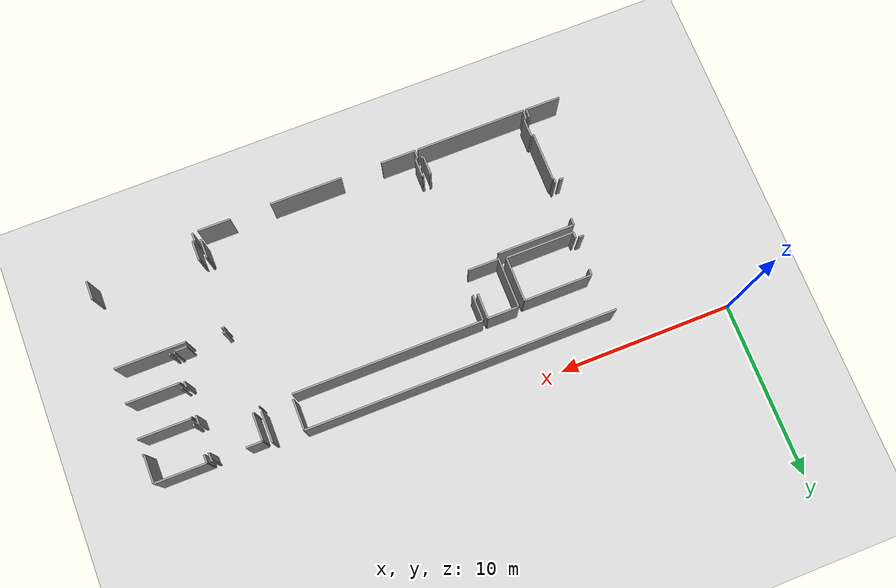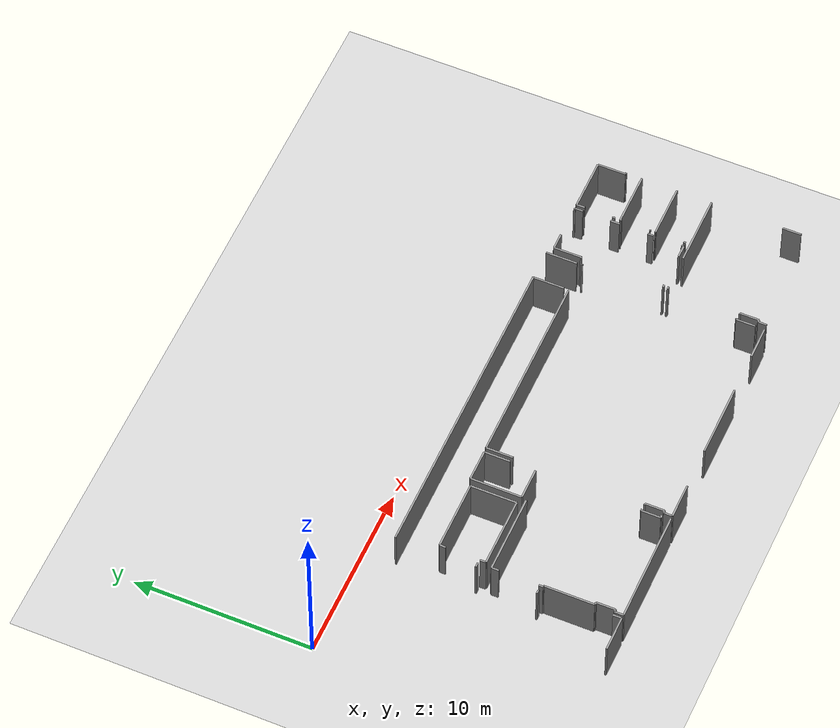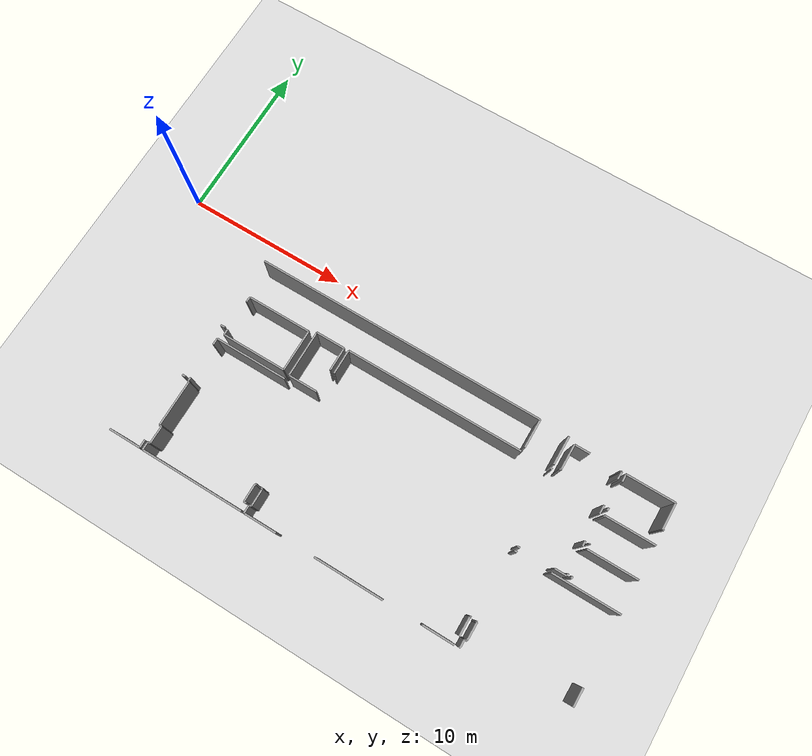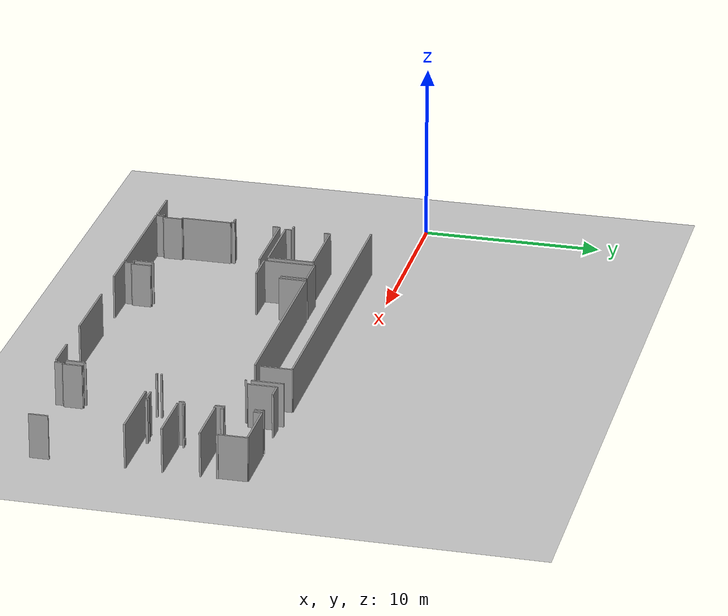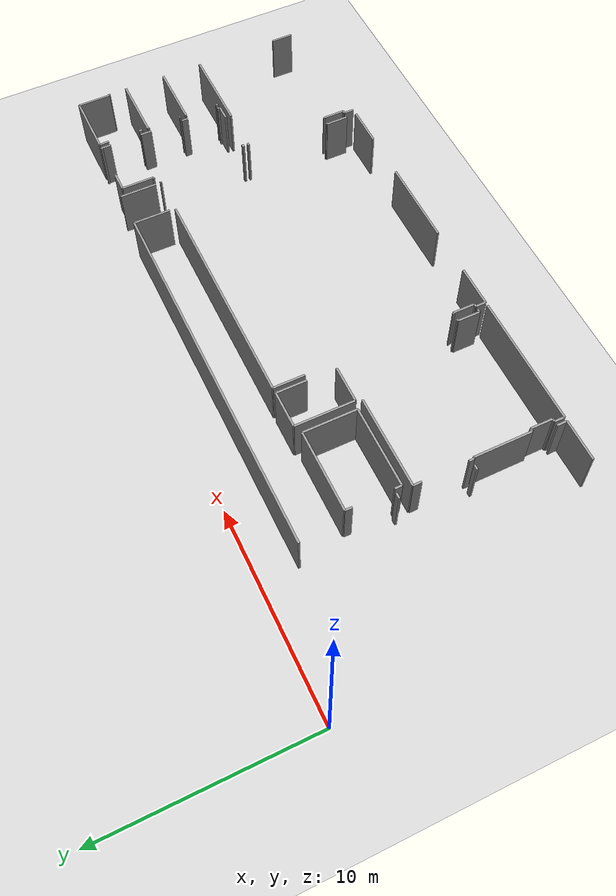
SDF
<sdf version="1.6">
 <world name="default">
  <model name="ground_plane">
   <static>1</static>
   <link name="link">
    <collision name="collision">
     <geometry><plane><normal>0 0 1</normal><size>100 100</size></plane></geometry>
     <surface><friction><ode><mu>100</mu><mu2>50</mu2></ode></friction></surface>
    </collision>
    <visual name="visual">
     <cast_shadows>0</cast_shadows>
     <geometry><plane><normal>0 0 1</normal><size>100 100</size></plane></geometry>
     <material>
      <script><uri>file://media/materials/scripts/gazebo.material</uri><name>Gazebo/Grey</name></script>
     </material>
    </visual>
   </link>
  </model>
  <model name="0510040942_A-40">
   <static>1</static>
   <link name="Wall_172">
    <collision name="Wall_172_Collision">
     <geometry><box><size>0.270246266668 0.1 2.5</size></box></geometry>
     <pose>0.135123133334 0 1.25 0 0 0</pose>
    </collision>
    <visual name="Wall_172_Visual">
     <pose>0.135123133334 0 1.25 0 0 0</pose>
     <geometry><box><size>0.270246266668 0.1 2.5</size></box></geometry>
     <material>
      <script><uri>file://media/materials/scripts/gazebo.material</uri><name>Gazebo/Grey</name></script>
      <ambient>1 1 1 1</ambient>
     </material>
    </visual>
    <pose>65.2724665998 -18.7663828869 0 0 0 3.14159265359</pose>
   </link>
   <link name="Wall_175">
    <collision name="Wall_175_Collision">
     <geometry><box><size>0.221652689141 0.1 2.5</size></box></geometry>
     <pose>0.11082634457 0 1.25 0 0 0</pose>
    </collision>
    <visual name="Wall_175_Visual">
     <pose>0.11082634457 0 1.25 0 0 0</pose>
     <geometry><box><size>0.221652689141 0.1 2.5</size></box></geometry>
     <material>
      <script><uri>file://media/materials/scripts/gazebo.material</uri><name>Gazebo/Grey</name></script>
      <ambient>1 1 1 1</ambient>
     </material>
    </visual>
    <pose>65.0022203332 -22.2106905871 0 0 0 3.14159265359</pose>
   </link>
   <link name="Wall_183">
    <collision name="Wall_183_Collision">
     <geometry><box><size>0.483271375465 0.1 2.5</size></box></geometry>
     <pose>0.241635687732 0 1.25 0 0 0</pose>
    </collision>
    <visual name="Wall_183_Visual">
     <pose>0.241635687732 0 1.25 0 0 0</pose>
     <geometry><box><size>0.483271375465 0.1 2.5</size></box></geometry>
     <material>
      <script><uri>file://media/materials/scripts/gazebo.material</uri><name>Gazebo/Grey</name></script>
      <ambient>1 1 1 1</ambient>
     </material>
    </visual>
    <pose>65.1320146669 -26.2039915247 0 0 0 -1.57079632679</pose>
   </link>
   <link name="Wall_184">
    <collision name="Wall_184_Collision">
     <geometry><box><size>1.9843434792 0.1 2.5</size></box></geometry>
     <pose>0.992171739599 0 1.25 0 0 0</pose>
    </collision>
    <visual name="Wall_184_Visual">
     <pose>0.992171739599 0 1.25 0 0 0</pose>
     <geometry><box><size>1.9843434792 0.1 2.5</size></box></geometry>
     <material>
      <script><uri>file://media/materials/scripts/gazebo.material</uri><name>Gazebo/Grey</name></script>
      <ambient>1 1 1 1</ambient>
     </material>
    </visual>
    <pose>65.1320146669 -26.6872629001 0 0 0 3.14159265359</pose>
   </link>
   <link name="Wall_189">
    <collision name="Wall_189_Collision">
     <geometry><box><size>3.9109582958 0.1 2.5</size></box></geometry>
     <pose>1.9554791479 0 1.25 0 0 0</pose>
    </collision>
    <visual name="Wall_189_Visual">
     <pose>1.9554791479 0 1.25 0 0 0</pose>
     <geometry><box><size>3.9109582958 0.1 2.5</size></box></geometry>
     <material>
      <script><uri>file://media/materials/scripts/gazebo.material</uri><name>Gazebo/Grey</name></script>
      <ambient>1 1 1 1</ambient>
     </material>
    </visual>
    <pose>65.4816854232 -16.564827385 0 0 0 0.0</pose>
   </link>
   <link name="Wall_190">
    <collision name="Wall_190_Collision">
     <geometry><box><size>2.56733953335 0.1 2.5</size></box></geometry>
     <pose>1.28366976667 0 1.25 0 0 0</pose>
    </collision>
    <visual name="Wall_190_Visual">
     <pose>1.28366976667 0 1.25 0 0 0</pose>
     <geometry><box><size>2.56733953335 0.1 2.5</size></box></geometry>
     <material>
      <script><uri>file://media/materials/scripts/gazebo.material</uri><name>Gazebo/Grey</name></script>
      <ambient>1 1 1 1</ambient>
     </material>
    </visual>
    <pose>69.392643719 -16.564827385 0 0 0 -1.57079632679</pose>
   </link>
   <link name="Wall_191">
    <collision name="Wall_191_Collision">
     <geometry><box><size>3.92364591395 0.1 2.5</size></box></geometry>
     <pose>1.96182295698 0 1.25 0 0 0</pose>
    </collision>
    <visual name="Wall_191_Visual">
     <pose>1.96182295698 0 1.25 0 0 0</pose>
     <geometry><box><size>3.92364591395 0.1 2.5</size></box></geometry>
     <material>
      <script><uri>file://media/materials/scripts/gazebo.material</uri><name>Gazebo/Grey</name></script>
      <ambient>1 1 1 1</ambient>
     </material>
    </visual>
    <pose>69.392643719 -19.1321669183 0 0 0 3.14159265359</pose>
   </link>
   <link name="Wall_192">
    <collision name="Wall_192_Collision">
     <geometry><box><size>0.334318738343 0.1 2.5</size></box></geometry>
     <pose>0.167159369172 0 1.25 0 0 0</pose>
    </collision>
    <visual name="Wall_192_Visual">
     <pose>0.167159369172 0 1.25 0 0 0</pose>
     <geometry><box><size>0.334318738343 0.1 2.5</size></box></geometry>
     <material>
      <script><uri>file://media/materials/scripts/gazebo.material</uri><name>Gazebo/Grey</name></script>
      <ambient>1 1 1 1</ambient>
     </material>
    </visual>
    <pose>65.468997805 -19.1321669183 0 0 0 1.57079632679</pose>
   </link>
   <link name="Wall_193">
    <collision name="Wall_193_Collision">
     <geometry><box><size>0.340898734039 0.1 2.5</size></box></geometry>
     <pose>0.170449367019 0 1.25 0 0 0</pose>
    </collision>
    <visual name="Wall_193_Visual">
     <pose>0.170449367019 0 1.25 0 0 0</pose>
     <geometry><box><size>0.340898734039 0.1 2.5</size></box></geometry>
     <material>
      <script><uri>file://media/materials/scripts/gazebo.material</uri><name>Gazebo/Grey</name></script>
      <ambient>1 1 1 1</ambient>
     </material>
    </visual>
    <pose>65.468997805 -16.9054899324 0 0 0 1.53356958512</pose>
   </link>
   <link name="Wall_194">
    <collision name="Wall_194_Collision">
     <geometry><box><size>0.488219546545 0.1 2.5</size></box></geometry>
     <pose>0.244109773272 0 1.25 0 0 0</pose>
    </collision>
    <visual name="Wall_194_Visual">
     <pose>0.244109773272 0 1.25 0 0 0</pose>
     <geometry><box><size>0.488219546545 0.1 2.5</size></box></geometry>
     <material>
      <script><uri>file://media/materials/scripts/gazebo.material</uri><name>Gazebo/Grey</name></script>
      <ambient>1 1 1 1</ambient>
     </material>
    </visual>
    <pose>65.3348896812 -26.6974129947 0 0 0 1.57079632679</pose>
   </link>
   <link name="Wall_195">
    <collision name="Wall_195_Collision">
     <geometry><box><size>0.142608828045 0.1 2.5</size></box></geometry>
     <pose>0.0713044140224 0 1.25 0 0 0</pose>
    </collision>
    <visual name="Wall_195_Visual">
     <pose>0.0713044140224 0 1.25 0 0 0</pose>
     <geometry><box><size>0.142608828045 0.1 2.5</size></box></geometry>
     <material>
      <script><uri>file://media/materials/scripts/gazebo.material</uri><name>Gazebo/Grey</name></script>
      <ambient>1 1 1 1</ambient>
     </material>
    </visual>
    <pose>65.3348896812 -26.2091934481 0 0 0 0.0</pose>
   </link>
   <link name="Wall_196">
    <collision name="Wall_196_Collision">
     <geometry><box><size>1.06918558179 0.1 2.5</size></box></geometry>
     <pose>0.534592790895 0 1.25 0 0 0</pose>
    </collision>
    <visual name="Wall_196_Visual">
     <pose>0.534592790895 0 1.25 0 0 0</pose>
     <geometry><box><size>1.06918558179 0.1 2.5</size></box></geometry>
     <material>
      <script><uri>file://media/materials/scripts/gazebo.material</uri><name>Gazebo/Grey</name></script>
      <ambient>1 1 1 1</ambient>
     </material>
    </visual>
    <pose>65.4774985092 -26.2091934481 0 0 0 1.57079632679</pose>
   </link>
   <link name="Wall_197">
    <collision name="Wall_197_Collision">
     <geometry><box><size>0.143496961315 0.1 2.5</size></box></geometry>
     <pose>0.0717484806577 0 1.25 0 0 0</pose>
    </collision>
    <visual name="Wall_197_Visual">
     <pose>0.0717484806577 0 1.25 0 0 0</pose>
     <geometry><box><size>0.143496961315 0.1 2.5</size></box></geometry>
     <material>
      <script><uri>file://media/materials/scripts/gazebo.material</uri><name>Gazebo/Grey</name></script>
      <ambient>1 1 1 1</ambient>
     </material>
    </visual>
    <pose>65.4774985092 -25.1400078663 0 0 0 3.14159265359</pose>
   </link>
   <link name="Wall_198">
    <collision name="Wall_198_Collision">
     <geometry><box><size>2.79330601266 0.1 2.5</size></box></geometry>
     <pose>1.39665300633 0 1.25 0 0 0</pose>
    </collision>
    <visual name="Wall_198_Visual">
     <pose>1.39665300633 0 1.25 0 0 0</pose>
     <geometry><box><size>2.79330601266 0.1 2.5</size></box></geometry>
     <material>
      <script><uri>file://media/materials/scripts/gazebo.material</uri><name>Gazebo/Grey</name></script>
      <ambient>1 1 1 1</ambient>
     </material>
    </visual>
    <pose>65.3340015479 -25.1400078663 0 0 0 1.57079632679</pose>
   </link>
   <link name="Wall_199">
    <collision name="Wall_199_Collision">
     <geometry><box><size>0.0609005671365 0.1 2.5</size></box></geometry>
     <pose>0.0304502835683 0 1.25 0 0 0</pose>
    </collision>
    <visual name="Wall_199_Visual">
     <pose>0.0304502835683 0 1.25 0 0 0</pose>
     <geometry><box><size>0.0609005671365 0.1 2.5</size></box></geometry>
     <material>
      <script><uri>file://media/materials/scripts/gazebo.material</uri><name>Gazebo/Grey</name></script>
      <ambient>1 1 1 1</ambient>
     </material>
    </visual>
    <pose>65.3340015479 -22.3467018537 0 0 0 3.14159265359</pose>
   </link>
   <link name="Wall_200">
    <collision name="Wall_200_Collision">
     <geometry><box><size>0.239415354555 0.1 2.5</size></box></geometry>
     <pose>0.119707677278 0 1.25 0 0 0</pose>
    </collision>
    <visual name="Wall_200_Visual">
     <pose>0.119707677278 0 1.25 0 0 0</pose>
     <geometry><box><size>0.239415354555 0.1 2.5</size></box></geometry>
     <material>
      <script><uri>file://media/materials/scripts/gazebo.material</uri><name>Gazebo/Grey</name></script>
      <ambient>1 1 1 1</ambient>
     </material>
    </visual>
    <pose>65.2731009808 -22.3467018537 0 0 0 1.57079632679</pose>
   </link>
   <link name="Wall_201">
    <collision name="Wall_201_Collision">
     <geometry><box><size>0.406257533273 0.1 2.5</size></box></geometry>
     <pose>0.203128766637 0 1.25 0 0 0</pose>
    </collision>
    <visual name="Wall_201_Visual">
     <pose>0.203128766637 0 1.25 0 0 0</pose>
     <geometry><box><size>0.406257533273 0.1 2.5</size></box></geometry>
     <material>
      <script><uri>file://media/materials/scripts/gazebo.material</uri><name>Gazebo/Grey</name></script>
      <ambient>1 1 1 1</ambient>
     </material>
    </visual>
    <pose>65.2731009808 -19.9238742911 0 0 0 1.57079632679</pose>
   </link>
   <link name="Wall_202">
    <collision name="Wall_202_Collision">
     <geometry><box><size>4.45081644823 0.1 2.5</size></box></geometry>
     <pose>2.22540822411 0 1.25 0 0 0</pose>
    </collision>
    <visual name="Wall_202_Visual">
     <pose>2.22540822411 0 1.25 0 0 0</pose>
     <geometry><box><size>4.45081644823 0.1 2.5</size></box></geometry>
     <material>
      <script><uri>file://media/materials/scripts/gazebo.material</uri><name>Gazebo/Grey</name></script>
      <ambient>1 1 1 1</ambient>
     </material>
    </visual>
    <pose>65.2731009808 -19.5176167578 0 0 0 0.0</pose>
   </link>
   <link name="Wall_203">
    <collision name="Wall_203_Collision">
     <geometry><box><size>0.0899552127079 0.1 2.5</size></box></geometry>
     <pose>0.044977606354 0 1.25 0 0 0</pose>
    </collision>
    <visual name="Wall_203_Visual">
     <pose>0.044977606354 0 1.25 0 0 0</pose>
     <geometry><box><size>0.0899552127079 0.1 2.5</size></box></geometry>
     <material>
      <script><uri>file://media/materials/scripts/gazebo.material</uri><name>Gazebo/Grey</name></script>
      <ambient>1 1 1 1</ambient>
     </material>
    </visual>
    <pose>71.5778321936 -25.1138713729 0 0 0 3.14159265359</pose>
   </link>
   <link name="Wall_204">
    <collision name="Wall_204_Collision">
     <geometry><box><size>1.08073131431 0.1 2.5</size></box></geometry>
     <pose>0.540365657155 0 1.25 0 0 0</pose>
    </collision>
    <visual name="Wall_204_Visual">
     <pose>0.540365657155 0 1.25 0 0 0</pose>
     <geometry><box><size>1.08073131431 0.1 2.5</size></box></geometry>
     <material>
      <script><uri>file://media/materials/scripts/gazebo.material</uri><name>Gazebo/Grey</name></script>
      <ambient>1 1 1 1</ambient>
     </material>
    </visual>
    <pose>71.4878769809 -25.1138713729 0 0 0 -1.57079632679</pose>
   </link>
   <link name="Wall_205">
    <collision name="Wall_205_Collision">
     <geometry><box><size>0.156945836558 0.1 2.5</size></box></geometry>
     <pose>0.0784729182791 0 1.25 0 0 0</pose>
    </collision>
    <visual name="Wall_205_Visual">
     <pose>0.0784729182791 0 1.25 0 0 0</pose>
     <geometry><box><size>0.156945836558 0.1 2.5</size></box></geometry>
     <material>
      <script><uri>file://media/materials/scripts/gazebo.material</uri><name>Gazebo/Grey</name></script>
      <ambient>1 1 1 1</ambient>
     </material>
    </visual>
    <pose>71.4878769809 -26.1946026872 0 0 0 0.0</pose>
   </link>
   <link name="Wall_206">
    <collision name="Wall_206_Collision">
     <geometry><box><size>6.30994346839 0.1 2.5</size></box></geometry>
     <pose>3.15497173419 0 1.25 0 0 0</pose>
    </collision>
    <visual name="Wall_206_Visual">
     <pose>3.15497173419 0 1.25 0 0 0</pose>
     <geometry><box><size>6.30994346839 0.1 2.5</size></box></geometry>
     <material>
      <script><uri>file://media/materials/scripts/gazebo.material</uri><name>Gazebo/Grey</name></script>
      <ambient>1 1 1 1</ambient>
     </material>
    </visual>
    <pose>71.6448228174 -26.6859941383 0 0 0 -3.13978299196</pose>
   </link>
   <link name="Wall_207">
    <collision name="Wall_207_Collision">
     <geometry><box><size>2.85306469416 0.1 2.5</size></box></geometry>
     <pose>1.42653234708 0 1.25 0 0 0</pose>
    </collision>
    <visual name="Wall_207_Visual">
     <pose>1.42653234708 0 1.25 0 0 0</pose>
     <geometry><box><size>2.85306469416 0.1 2.5</size></box></geometry>
     <material>
      <script><uri>file://media/materials/scripts/gazebo.material</uri><name>Gazebo/Grey</name></script>
      <ambient>1 1 1 1</ambient>
     </material>
    </visual>
    <pose>69.8109544895 -19.2325259779 0 0 0 1.57079632679</pose>
   </link>
   <link name="Wall_208">
    <collision name="Wall_208_Collision">
     <geometry><box><size>1.77702779857 0.1 2.5</size></box></geometry>
     <pose>0.888513899286 0 1.25 0 0 0</pose>
    </collision>
    <visual name="Wall_208_Visual">
     <pose>0.888513899286 0 1.25 0 0 0</pose>
     <geometry><box><size>1.77702779857 0.1 2.5</size></box></geometry>
     <material>
      <script><uri>file://media/materials/scripts/gazebo.material</uri><name>Gazebo/Grey</name></script>
      <ambient>1 1 1 1</ambient>
     </material>
    </visual>
    <pose>69.8109544895 -16.3794612837 0 0 0 0.0</pose>
   </link>
   <link name="Wall_209">
    <collision name="Wall_209_Collision">
     <geometry><box><size>1.45159039294 0.1 2.5</size></box></geometry>
     <pose>0.725795196468 0 1.25 0 0 0</pose>
    </collision>
    <visual name="Wall_209_Visual">
     <pose>0.725795196468 0 1.25 0 0 0</pose>
     <geometry><box><size>1.45159039294 0.1 2.5</size></box></geometry>
     <material>
      <script><uri>file://media/materials/scripts/gazebo.material</uri><name>Gazebo/Grey</name></script>
      <ambient>1 1 1 1</ambient>
     </material>
    </visual>
    <pose>71.5879822881 -16.3794612837 0 0 0 -1.57079632679</pose>
   </link>
   <link name="Wall_210">
    <collision name="Wall_210_Collision">
     <geometry><box><size>1.77703160775 0.1 2.5</size></box></geometry>
     <pose>0.888515803876 0 1.25 0 0 0</pose>
    </collision>
    <visual name="Wall_210_Visual">
     <pose>0.888515803876 0 1.25 0 0 0</pose>
     <geometry><box><size>1.77703160775 0.1 2.5</size></box></geometry>
     <material>
      <script><uri>file://media/materials/scripts/gazebo.material</uri><name>Gazebo/Grey</name></script>
      <ambient>1 1 1 1</ambient>
     </material>
    </visual>
    <pose>71.5879822881 -19.2362053872 0 0 0 3.13952211535</pose>
   </link>
   <link name="Wall_211">
    <collision name="Wall_211_Collision">
     <geometry><box><size>1.06626742962 0.1 2.5</size></box></geometry>
     <pose>0.533133714808 0 1.25 0 0 0</pose>
    </collision>
    <visual name="Wall_211_Visual">
     <pose>0.533133714808 0 1.25 0 0 0</pose>
     <geometry><box><size>1.06626742962 0.1 2.5</size></box></geometry>
     <material>
      <script><uri>file://media/materials/scripts/gazebo.material</uri><name>Gazebo/Grey</name></script>
      <ambient>1 1 1 1</ambient>
     </material>
    </visual>
    <pose>71.9542738242 -26.198662725 0 0 0 1.57079632679</pose>
   </link>
   <link name="Wall_212">
    <collision name="Wall_212_Collision">
     <geometry><box><size>0.0870370605326 0.1 2.5</size></box></geometry>
     <pose>0.0435185302663 0 1.25 0 0 0</pose>
    </collision>
    <visual name="Wall_212_Visual">
     <pose>0.0435185302663 0 1.25 0 0 0</pose>
     <geometry><box><size>0.0870370605326 0.1 2.5</size></box></geometry>
     <material>
      <script><uri>file://media/materials/scripts/gazebo.material</uri><name>Gazebo/Grey</name></script>
      <ambient>1 1 1 1</ambient>
     </material>
    </visual>
    <pose>71.9542738242 -25.1323952954 0 0 0 3.14159265359</pose>
   </link>
   <link name="Wall_213">
    <collision name="Wall_213_Collision">
     <geometry><box><size>1.50881155081 0.1 2.5</size></box></geometry>
     <pose>0.754405775404 0 1.25 0 0 0</pose>
    </collision>
    <visual name="Wall_213_Visual">
     <pose>0.754405775404 0 1.25 0 0 0</pose>
     <geometry><box><size>1.50881155081 0.1 2.5</size></box></geometry>
     <material>
      <script><uri>file://media/materials/scripts/gazebo.material</uri><name>Gazebo/Grey</name></script>
      <ambient>1 1 1 1</ambient>
     </material>
    </visual>
    <pose>71.8672367636 -17.8708907977 0 0 0 1.57079632679</pose>
   </link>
   <link name="Wall_214">
    <collision name="Wall_214_Collision">
     <geometry><box><size>10.8493091592 0.1 2.5</size></box></geometry>
     <pose>5.4246545796 0 1.25 0 0 0</pose>
    </collision>
    <visual name="Wall_214_Visual">
     <pose>5.4246545796 0 1.25 0 0 0</pose>
     <geometry><box><size>10.8493091592 0.1 2.5</size></box></geometry>
     <material>
      <script><uri>file://media/materials/scripts/gazebo.material</uri><name>Gazebo/Grey</name></script>
      <ambient>1 1 1 1</ambient>
     </material>
    </visual>
    <pose>71.8672367636 -16.3620792469 0 0 0 0.0</pose>
   </link>
   <link name="Wall_215">
    <collision name="Wall_215_Collision">
     <geometry><box><size>0.0667368714871 0.1 2.5</size></box></geometry>
     <pose>0.0333684357436 0 1.25 0 0 0</pose>
    </collision>
    <visual name="Wall_215_Visual">
     <pose>0.0333684357436 0 1.25 0 0 0</pose>
     <geometry><box><size>0.0667368714871 0.1 2.5</size></box></geometry>
     <material>
      <script><uri>file://media/materials/scripts/gazebo.material</uri><name>Gazebo/Grey</name></script>
      <ambient>1 1 1 1</ambient>
     </material>
    </visual>
    <pose>84.5101945012 -16.3620792469 0 0 0 0.0</pose>
   </link>
   <link name="Wall_216">
    <collision name="Wall_216_Collision">
     <geometry><box><size>0.0751106994684 0.1 2.5</size></box></geometry>
     <pose>0.0375553497342 0 1.25 0 0 0</pose>
    </collision>
    <visual name="Wall_216_Visual">
     <pose>0.0375553497342 0 1.25 0 0 0</pose>
     <geometry><box><size>0.0751106994684 0.1 2.5</size></box></geometry>
     <material>
      <script><uri>file://media/materials/scripts/gazebo.material</uri><name>Gazebo/Grey</name></script>
      <ambient>1 1 1 1</ambient>
     </material>
    </visual>
    <pose>84.5769313727 -25.097123717 0 0 0 3.14159265359</pose>
   </link>
   <link name="Wall_217">
    <collision name="Wall_217_Collision">
     <geometry><box><size>1.08707512339 0.1 2.5</size></box></geometry>
     <pose>0.543537561694 0 1.25 0 0 0</pose>
    </collision>
    <visual name="Wall_217_Visual">
     <pose>0.543537561694 0 1.25 0 0 0</pose>
     <geometry><box><size>1.08707512339 0.1 2.5</size></box></geometry>
     <material>
      <script><uri>file://media/materials/scripts/gazebo.material</uri><name>Gazebo/Grey</name></script>
      <ambient>1 1 1 1</ambient>
     </material>
    </visual>
    <pose>84.5018206732 -25.097123717 0 0 0 -1.57079632679</pose>
   </link>
   <link name="Wall_218">
    <collision name="Wall_218_Collision">
     <geometry><box><size>1.86939365873 0.1 2.5</size></box></geometry>
     <pose>0.934696829364 0 1.25 0 0 0</pose>
    </collision>
    <visual name="Wall_218_Visual">
     <pose>0.934696829364 0 1.25 0 0 0</pose>
     <geometry><box><size>1.86939365873 0.1 2.5</size></box></geometry>
     <material>
      <script><uri>file://media/materials/scripts/gazebo.material</uri><name>Gazebo/Grey</name></script>
      <ambient>1 1 1 1</ambient>
     </material>
    </visual>
    <pose>84.5018206732 -26.6909423094 0 0 0 3.14159265359</pose>
   </link>
   <link name="Wall_219">
    <collision name="Wall_219_Collision">
     <geometry><box><size>4.15849372597 0.1 2.5</size></box></geometry>
     <pose>2.07924686299 0 1.25 0 0 0</pose>
    </collision>
    <visual name="Wall_219_Visual">
     <pose>2.07924686299 0 1.25 0 0 0</pose>
     <geometry><box><size>4.15849372597 0.1 2.5</size></box></geometry>
     <material>
      <script><uri>file://media/materials/scripts/gazebo.material</uri><name>Gazebo/Grey</name></script>
      <ambient>1 1 1 1</ambient>
     </material>
    </visual>
    <pose>80.3056447213 -26.6909423094 0 0 0 3.14159265359</pose>
   </link>
   <link name="Wall_220">
    <collision name="Wall_220_Collision">
     <geometry><box><size>1.98586599338 0.1 2.5</size></box></geometry>
     <pose>0.992932996689 0 1.25 0 0 0</pose>
    </collision>
    <visual name="Wall_220_Visual">
     <pose>0.992932996689 0 1.25 0 0 0</pose>
     <geometry><box><size>1.98586599338 0.1 2.5</size></box></geometry>
     <material>
      <script><uri>file://media/materials/scripts/gazebo.material</uri><name>Gazebo/Grey</name></script>
      <ambient>1 1 1 1</ambient>
     </material>
    </visual>
    <pose>73.8081885888 -26.6909423094 0 0 0 3.14159265359</pose>
   </link>
   <link name="Wall_221">
    <collision name="Wall_221_Collision">
     <geometry><box><size>0.476166309299 0.1 2.5</size></box></geometry>
     <pose>0.238083154649 0 1.25 0 0 0</pose>
    </collision>
    <visual name="Wall_221_Visual">
     <pose>0.238083154649 0 1.25 0 0 0</pose>
     <geometry><box><size>0.476166309299 0.1 2.5</size></box></geometry>
     <material>
      <script><uri>file://media/materials/scripts/gazebo.material</uri><name>Gazebo/Grey</name></script>
      <ambient>1 1 1 1</ambient>
     </material>
    </visual>
    <pose>71.8223225954 -26.6909423094 0 0 0 1.57079632679</pose>
   </link>
   <link name="Wall_222">
    <collision name="Wall_222_Collision">
     <geometry><box><size>0.132931427487 0.1 2.5</size></box></geometry>
     <pose>0.0664657137435 0 1.25 0 0 0</pose>
    </collision>
    <visual name="Wall_222_Visual">
     <pose>0.0664657137435 0 1.25 0 0 0</pose>
     <geometry><box><size>0.132931427487 0.1 2.5</size></box></geometry>
     <material>
      <script><uri>file://media/materials/scripts/gazebo.material</uri><name>Gazebo/Grey</name></script>
      <ambient>1 1 1 1</ambient>
     </material>
    </visual>
    <pose>71.8223225954 -26.2147760001 0 0 0 0.12151375678</pose>
   </link>
   <link name="Wall_223">
    <collision name="Wall_223_Collision">
     <geometry><box><size>0.0851339178096 0.1 2.5</size></box></geometry>
     <pose>0.0425669589048 0 1.25 0 0 0</pose>
    </collision>
    <visual name="Wall_223_Visual">
     <pose>0.0425669589048 0 1.25 0 0 0</pose>
     <geometry><box><size>0.0851339178096 0.1 2.5</size></box></geometry>
     <material>
      <script><uri>file://media/materials/scripts/gazebo.material</uri><name>Gazebo/Grey</name></script>
      <ambient>1 1 1 1</ambient>
     </material>
    </visual>
    <pose>84.8884123983 -16.1471509953 0 0 0 0.0</pose>
   </link>
   <link name="Wall_224">
    <collision name="Wall_224_Collision">
     <geometry><box><size>1.56209954705 0.1 2.5</size></box></geometry>
     <pose>0.781049773526 0 1.25 0 0 0</pose>
    </collision>
    <visual name="Wall_224_Visual">
     <pose>0.781049773526 0 1.25 0 0 0</pose>
     <geometry><box><size>1.56209954705 0.1 2.5</size></box></geometry>
     <material>
      <script><uri>file://media/materials/scripts/gazebo.material</uri><name>Gazebo/Grey</name></script>
      <ambient>1 1 1 1</ambient>
     </material>
    </visual>
    <pose>84.9735463162 -16.1471509953 0 0 0 1.57079632679</pose>
   </link>
   <link name="Wall_225">
    <collision name="Wall_225_Collision">
     <geometry><box><size>0.927972391743 0.1 2.5</size></box></geometry>
     <pose>0.463986195871 0 1.25 0 0 0</pose>
    </collision>
    <visual name="Wall_225_Visual">
     <pose>0.463986195871 0 1.25 0 0 0</pose>
     <geometry><box><size>0.927972391743 0.1 2.5</size></box></geometry>
     <material>
      <script><uri>file://media/materials/scripts/gazebo.material</uri><name>Gazebo/Grey</name></script>
      <ambient>1 1 1 1</ambient>
     </material>
    </visual>
    <pose>84.9735463162 -14.5850514483 0 0 0 0.0</pose>
   </link>
   <link name="Wall_226">
    <collision name="Wall_226_Collision">
     <geometry><box><size>0.088305822348 0.1 2.5</size></box></geometry>
     <pose>0.044152911174 0 1.25 0 0 0</pose>
    </collision>
    <visual name="Wall_226_Visual">
     <pose>0.044152911174 0 1.25 0 0 0</pose>
     <geometry><box><size>0.088305822348 0.1 2.5</size></box></geometry>
     <material>
      <script><uri>file://media/materials/scripts/gazebo.material</uri><name>Gazebo/Grey</name></script>
      <ambient>1 1 1 1</ambient>
     </material>
    </visual>
    <pose>87.7046829999 -14.5850514483 0 0 0 0.0</pose>
   </link>
   <link name="Wall_227">
    <collision name="Wall_227_Collision">
     <geometry><box><size>0.465889338594 0.1 2.5</size></box></geometry>
     <pose>0.232944669297 0 1.25 0 0 0</pose>
    </collision>
    <visual name="Wall_227_Visual">
     <pose>0.232944669297 0 1.25 0 0 0</pose>
     <geometry><box><size>0.465889338594 0.1 2.5</size></box></geometry>
     <material>
      <script><uri>file://media/materials/scripts/gazebo.material</uri><name>Gazebo/Grey</name></script>
      <ambient>1 1 1 1</ambient>
     </material>
    </visual>
    <pose>87.7929888222 -14.5850514483 0 0 0 -1.57079632679</pose>
   </link>
   <link name="Wall_228">
    <collision name="Wall_228_Collision">
     <geometry><box><size>0.533894971897 0.1 2.5</size></box></geometry>
     <pose>0.266947485948 0 1.25 0 0 0</pose>
    </collision>
    <visual name="Wall_228_Visual">
     <pose>0.266947485948 0 1.25 0 0 0</pose>
     <geometry><box><size>0.533894971897 0.1 2.5</size></box></geometry>
     <material>
      <script><uri>file://media/materials/scripts/gazebo.material</uri><name>Gazebo/Grey</name></script>
      <ambient>1 1 1 1</ambient>
     </material>
    </visual>
    <pose>87.7929888222 -16.6214141619 0 0 0 -1.57079632679</pose>
   </link>
   <link name="Wall_229">
    <collision name="Wall_229_Collision">
     <geometry><box><size>0.326198662725 0.1 2.5</size></box></geometry>
     <pose>0.163099331363 0 1.25 0 0 0</pose>
    </collision>
    <visual name="Wall_229_Visual">
     <pose>0.163099331363 0 1.25 0 0 0</pose>
     <geometry><box><size>0.326198662725 0.1 2.5</size></box></geometry>
     <material>
      <script><uri>file://media/materials/scripts/gazebo.material</uri><name>Gazebo/Grey</name></script>
      <ambient>1 1 1 1</ambient>
     </material>
    </visual>
    <pose>87.7929888222 -18.756613421 0 0 0 -1.57079632679</pose>
   </link>
   <link name="Wall_230">
    <collision name="Wall_230_Collision">
     <geometry><box><size>0.141847570955 0.1 2.5</size></box></geometry>
     <pose>0.0709237854777 0 1.25 0 0 0</pose>
    </collision>
    <visual name="Wall_230_Visual">
     <pose>0.0709237854777 0 1.25 0 0 0</pose>
     <geometry><box><size>0.141847570955 0.1 2.5</size></box></geometry>
     <material>
      <script><uri>file://media/materials/scripts/gazebo.material</uri><name>Gazebo/Grey</name></script>
      <ambient>1 1 1 1</ambient>
     </material>
    </visual>
    <pose>87.7929888222 -20.6673687149 0 0 0 -1.57079632679</pose>
   </link>
   <link name="Wall_231">
    <collision name="Wall_231_Collision">
     <geometry><box><size>0.730045548549 0.1 2.5</size></box></geometry>
     <pose>0.365022774275 0 1.25 0 0 0</pose>
    </collision>
    <visual name="Wall_231_Visual">
     <pose>0.365022774275 0 1.25 0 0 0</pose>
     <geometry><box><size>0.730045548549 0.1 2.5</size></box></geometry>
     <material>
      <script><uri>file://media/materials/scripts/gazebo.material</uri><name>Gazebo/Grey</name></script>
      <ambient>1 1 1 1</ambient>
     </material>
    </visual>
    <pose>87.7929888222 -20.8092162858 0 0 0 3.14159265359</pose>
   </link>
   <link name="Wall_232">
    <collision name="Wall_232_Collision">
     <geometry><box><size>0.167109562248 0.1 2.5</size></box></geometry>
     <pose>0.0835547811241 0 1.25 0 0 0</pose>
    </collision>
    <visual name="Wall_232_Visual">
     <pose>0.0835547811241 0 1.25 0 0 0</pose>
     <geometry><box><size>0.167109562248 0.1 2.5</size></box></geometry>
     <material>
      <script><uri>file://media/materials/scripts/gazebo.material</uri><name>Gazebo/Grey</name></script>
      <ambient>1 1 1 1</ambient>
     </material>
    </visual>
    <pose>85.0553814532 -20.8092162858 0 0 0 -3.10058222562</pose>
   </link>
   <link name="Wall_233">
    <collision name="Wall_233_Collision">
     <geometry><box><size>2.92411535582 0.1 2.5</size></box></geometry>
     <pose>1.46205767791 0 1.25 0 0 0</pose>
    </collision>
    <visual name="Wall_233_Visual">
     <pose>1.46205767791 0 1.25 0 0 0</pose>
     <geometry><box><size>2.92411535582 0.1 2.5</size></box></geometry>
     <material>
      <script><uri>file://media/materials/scripts/gazebo.material</uri><name>Gazebo/Grey</name></script>
      <ambient>1 1 1 1</ambient>
     </material>
    </visual>
    <pose>88.0431886522 -14.5803570296 0 0 0 0.0</pose>
   </link>
   <link name="Wall_234">
    <collision name="Wall_234_Collision">
     <geometry><box><size>1.59090044026 0.1 2.5</size></box></geometry>
     <pose>0.79545022013 0 1.25 0 0 0</pose>
    </collision>
    <visual name="Wall_234_Visual">
     <pose>0.79545022013 0 1.25 0 0 0</pose>
     <geometry><box><size>1.59090044026 0.1 2.5</size></box></geometry>
     <material>
      <script><uri>file://media/materials/scripts/gazebo.material</uri><name>Gazebo/Grey</name></script>
      <ambient>1 1 1 1</ambient>
     </material>
    </visual>
    <pose>90.967304008 -14.5803570296 0 0 0 -1.57079632679</pose>
   </link>
   <link name="Wall_235">
    <collision name="Wall_235_Collision">
     <geometry><box><size>0.0877983176218 0.1 2.5</size></box></geometry>
     <pose>0.0438991588109 0 1.25 0 0 0</pose>
    </collision>
    <visual name="Wall_235_Visual">
     <pose>0.0438991588109 0 1.25 0 0 0</pose>
     <geometry><box><size>0.0877983176218 0.1 2.5</size></box></geometry>
     <material>
      <script><uri>file://media/materials/scripts/gazebo.material</uri><name>Gazebo/Grey</name></script>
      <ambient>1 1 1 1</ambient>
     </material>
    </visual>
    <pose>90.967304008 -16.1712574698 0 0 0 0.0</pose>
   </link>
   <link name="Wall_238">
    <collision name="Wall_238_Collision">
     <geometry><box><size>0.170014083256 0.1 2.5</size></box></geometry>
     <pose>0.0850070416281 0 1.25 0 0 0</pose>
    </collision>
    <visual name="Wall_238_Visual">
     <pose>0.0850070416281 0 1.25 0 0 0</pose>
     <geometry><box><size>0.170014083256 0.1 2.5</size></box></geometry>
     <material>
      <script><uri>file://media/materials/scripts/gazebo.material</uri><name>Gazebo/Grey</name></script>
      <ambient>1 1 1 1</ambient>
     </material>
    </visual>
    <pose>88.0600631843 -16.7910476166 0 0 0 1.57079632679</pose>
   </link>
   <link name="Wall_239">
    <collision name="Wall_239_Collision">
     <geometry><box><size>0.463785777036 0.1 2.5</size></box></geometry>
     <pose>0.231892888518 0 1.25 0 0 0</pose>
    </collision>
    <visual name="Wall_239_Visual">
     <pose>0.231892888518 0 1.25 0 0 0</pose>
     <geometry><box><size>0.463785777036 0.1 2.5</size></box></geometry>
     <material>
      <script><uri>file://media/materials/scripts/gazebo.material</uri><name>Gazebo/Grey</name></script>
      <ambient>1 1 1 1</ambient>
     </material>
    </visual>
    <pose>88.0600631843 -15.0438357207 0 0 0 1.60718868365</pose>
   </link>
   <link name="Wall_240">
    <collision name="Wall_240_Collision">
     <geometry><box><size>3.00011418856 0.1 2.5</size></box></geometry>
     <pose>1.50005709428 0 1.25 0 0 0</pose>
    </collision>
    <visual name="Wall_240_Visual">
     <pose>1.50005709428 0 1.25 0 0 0</pose>
     <geometry><box><size>3.00011418856 0.1 2.5</size></box></geometry>
     <material>
      <script><uri>file://media/materials/scripts/gazebo.material</uri><name>Gazebo/Grey</name></script>
      <ambient>1 1 1 1</ambient>
     </material>
    </visual>
    <pose>88.0480099471 -17.0796909296 0 0 0 0.0</pose>
   </link>
   <link name="Wall_243">
    <collision name="Wall_243_Collision">
     <geometry><box><size>0.0695281474809 0.1 2.5</size></box></geometry>
     <pose>0.0347640737404 0 1.25 0 0 0</pose>
    </collision>
    <visual name="Wall_243_Visual">
     <pose>0.0347640737404 0 1.25 0 0 0</pose>
     <geometry><box><size>0.0695281474809 0.1 2.5</size></box></geometry>
     <material>
      <script><uri>file://media/materials/scripts/gazebo.material</uri><name>Gazebo/Grey</name></script>
      <ambient>1 1 1 1</ambient>
     </material>
    </visual>
    <pose>88.0485174518 -18.8151033406 0 0 0 1.57079632679</pose>
   </link>
   <link name="Wall_244">
    <collision name="Wall_244_Collision">
     <geometry><box><size>0.0858966741611 0.1 2.5</size></box></geometry>
     <pose>0.0429483370806 0 1.25 0 0 0</pose>
    </collision>
    <visual name="Wall_244_Visual">
     <pose>0.0429483370806 0 1.25 0 0 0</pose>
     <geometry><box><size>0.0858966741611 0.1 2.5</size></box></geometry>
     <material>
      <script><uri>file://media/materials/scripts/gazebo.material</uri><name>Gazebo/Grey</name></script>
      <ambient>1 1 1 1</ambient>
     </material>
    </visual>
    <pose>88.0485174518 -17.1655861045 0 0 0 1.57670467754</pose>
   </link>
   <link name="Wall_245">
    <collision name="Wall_245_Collision">
     <geometry><box><size>3.00036794093 0.1 2.5</size></box></geometry>
     <pose>1.50018397046 0 1.25 0 0 0</pose>
    </collision>
    <visual name="Wall_245_Visual">
     <pose>1.50018397046 0 1.25 0 0 0</pose>
     <geometry><box><size>3.00036794093 0.1 2.5</size></box></geometry>
     <material>
      <script><uri>file://media/materials/scripts/gazebo.material</uri><name>Gazebo/Grey</name></script>
      <ambient>1 1 1 1</ambient>
     </material>
    </visual>
    <pose>88.0491518327 -19.0894096451 0 0 0 0.0</pose>
   </link>
   <link name="Wall_248">
    <collision name="Wall_248_Collision">
     <geometry><box><size>0.135250009516 0.1 2.5</size></box></geometry>
     <pose>0.0676250047579 0 1.25 0 0 0</pose>
    </collision>
    <visual name="Wall_248_Visual">
     <pose>0.0676250047579 0 1.25 0 0 0</pose>
     <geometry><box><size>0.135250009516 0.1 2.5</size></box></geometry>
     <material>
      <script><uri>file://media/materials/scripts/gazebo.material</uri><name>Gazebo/Grey</name></script>
      <ambient>1 1 1 1</ambient>
     </material>
    </visual>
    <pose>88.0450917949 -20.8160675996 0 0 0 1.57079632679</pose>
   </link>
   <link name="Wall_249">
    <collision name="Wall_249_Collision">
     <geometry><box><size>0.0414341556773 0.1 2.5</size></box></geometry>
     <pose>0.0207170778387 0 1.25 0 0 0</pose>
    </collision>
    <visual name="Wall_249_Visual">
     <pose>0.0207170778387 0 1.25 0 0 0</pose>
     <geometry><box><size>0.0414341556773 0.1 2.5</size></box></geometry>
     <material>
      <script><uri>file://media/materials/scripts/gazebo.material</uri><name>Gazebo/Grey</name></script>
      <ambient>1 1 1 1</ambient>
     </material>
    </visual>
    <pose>88.0450917949 -19.1306444041 0 0 0 1.47265113443</pose>
   </link>
   <link name="Wall_250">
    <collision name="Wall_250_Collision">
     <geometry><box><size>1.05180354492 0.1 2.5</size></box></geometry>
     <pose>0.52590177246 0 1.25 0 0 0</pose>
    </collision>
    <visual name="Wall_250_Visual">
     <pose>0.52590177246 0 1.25 0 0 0</pose>
     <geometry><box><size>1.05180354492 0.1 2.5</size></box></geometry>
     <material>
      <script><uri>file://media/materials/scripts/gazebo.material</uri><name>Gazebo/Grey</name></script>
      <ambient>1 1 1 1</ambient>
     </material>
    </visual>
    <pose>84.9465216895 -26.198662725 0 0 0 1.57079632679</pose>
   </link>
   <link name="Wall_251">
    <collision name="Wall_251_Collision">
     <geometry><box><size>0.0725731758377 0.1 2.5</size></box></geometry>
     <pose>0.0362865879188 0 1.25 0 0 0</pose>
    </collision>
    <visual name="Wall_251_Visual">
     <pose>0.0362865879188 0 1.25 0 0 0</pose>
     <geometry><box><size>0.0725731758377 0.1 2.5</size></box></geometry>
     <material>
      <script><uri>file://media/materials/scripts/gazebo.material</uri><name>Gazebo/Grey</name></script>
      <ambient>1 1 1 1</ambient>
     </material>
    </visual>
    <pose>84.9465216895 -25.1468591801 0 0 0 3.14159265359</pose>
   </link>
   <link name="Wall_252">
    <collision name="Wall_252_Collision">
     <geometry><box><size>0.163035893272 0.1 2.5</size></box></geometry>
     <pose>0.0815179466359 0 1.25 0 0 0</pose>
    </collision>
    <visual name="Wall_252_Visual">
     <pose>0.0815179466359 0 1.25 0 0 0</pose>
     <geometry><box><size>0.163035893272 0.1 2.5</size></box></geometry>
     <material>
      <script><uri>file://media/materials/scripts/gazebo.material</uri><name>Gazebo/Grey</name></script>
      <ambient>1 1 1 1</ambient>
     </material>
    </visual>
    <pose>84.8739485136 -21.0754025147 0 0 0 0.0</pose>
   </link>
   <link name="Wall_253">
    <collision name="Wall_253_Collision">
     <geometry><box><size>4.01664615502 0.1 2.5</size></box></geometry>
     <pose>2.00832307751 0 1.25 0 0 0</pose>
    </collision>
    <visual name="Wall_253_Visual">
     <pose>2.00832307751 0 1.25 0 0 0</pose>
     <geometry><box><size>4.01664615502 0.1 2.5</size></box></geometry>
     <material>
      <script><uri>file://media/materials/scripts/gazebo.material</uri><name>Gazebo/Grey</name></script>
      <ambient>1 1 1 1</ambient>
     </material>
    </visual>
    <pose>87.0297017141 -21.0754025147 0 0 0 0.0</pose>
   </link>
   <link name="Wall_256">
    <collision name="Wall_256_Collision">
     <geometry><box><size>1.05497544946 0.1 2.5</size></box></geometry>
     <pose>0.527487724729 0 1.25 0 0 0</pose>
    </collision>
    <visual name="Wall_256_Visual">
     <pose>0.527487724729 0 1.25 0 0 0</pose>
     <geometry><box><size>1.05497544946 0.1 2.5</size></box></geometry>
     <material>
      <script><uri>file://media/materials/scripts/gazebo.material</uri><name>Gazebo/Grey</name></script>
      <ambient>1 1 1 1</ambient>
     </material>
    </visual>
    <pose>90.9848129211 -25.1436872756 0 0 0 -1.57079632679</pose>
   </link>
   <link name="Wall_259">
    <collision name="Wall_259_Collision">
     <geometry><box><size>0.477181318751 0.1 2.5</size></box></geometry>
     <pose>0.238590659376 0 1.25 0 0 0</pose>
    </collision>
    <visual name="Wall_259_Visual">
     <pose>0.238590659376 0 1.25 0 0 0</pose>
     <geometry><box><size>0.477181318751 0.1 2.5</size></box></geometry>
     <material>
      <script><uri>file://media/materials/scripts/gazebo.material</uri><name>Gazebo/Grey</name></script>
      <ambient>1 1 1 1</ambient>
     </material>
    </visual>
    <pose>84.8097491658 -26.6847253765 0 0 0 1.57079632679</pose>
   </link>
   <link name="Wall_260">
    <collision name="Wall_260_Collision">
     <geometry><box><size>0.137060575325 0.1 2.5</size></box></geometry>
     <pose>0.0685302876623 0 1.25 0 0 0</pose>
    </collision>
    <visual name="Wall_260_Visual">
     <pose>0.0685302876623 0 1.25 0 0 0</pose>
     <geometry><box><size>0.137060575325 0.1 2.5</size></box></geometry>
     <material>
      <script><uri>file://media/materials/scripts/gazebo.material</uri><name>Gazebo/Grey</name></script>
      <ambient>1 1 1 1</ambient>
     </material>
    </visual>
    <pose>84.8097491658 -26.2075440578 0 0 0 0.0648440275532</pose>
   </link>
   <link name="Wall_465">
    <collision name="Wall_465_Collision">
     <geometry><box><size>1.75812324752 0.1 2.5</size></box></geometry>
     <pose>0.879061623761 0 1.25 0 0 0</pose>
    </collision>
    <visual name="Wall_465_Visual">
     <pose>0.879061623761 0 1.25 0 0 0</pose>
     <geometry><box><size>1.75812324752 0.1 2.5</size></box></geometry>
     <material>
      <script><uri>file://media/materials/scripts/gazebo.material</uri><name>Gazebo/Grey</name></script>
      <ambient>1 1 1 1</ambient>
     </material>
    </visual>
    <pose>84.5185683292 -14.3309184567 0 0 0 -1.57079632679</pose>
   </link>
   <link name="Wall_466">
    <collision name="Wall_466_Collision">
     <geometry><box><size>1.75812324752 0.1 2.5</size></box></geometry>
     <pose>0.879061623761 0 1.25 0 0 0</pose>
    </collision>
    <visual name="Wall_466_Visual">
     <pose>0.879061623761 0 1.25 0 0 0</pose>
     <geometry><box><size>1.75812324752 0.1 2.5</size></box></geometry>
     <material>
      <script><uri>file://media/materials/scripts/gazebo.material</uri><name>Gazebo/Grey</name></script>
      <ambient>1 1 1 1</ambient>
     </material>
    </visual>
    <pose>82.7614600911 -16.0890417042 0 0 0 1.57079632679</pose>
   </link>
   <link name="Wall_467">
    <collision name="Wall_467_Collision">
     <geometry><box><size>17.7718004999 0.1 2.5</size></box></geometry>
     <pose>8.88590024995 0 1.25 0 0 0</pose>
    </collision>
    <visual name="Wall_467_Visual">
     <pose>8.88590024995 0 1.25 0 0 0</pose>
     <geometry><box><size>17.7718004999 0.1 2.5</size></box></geometry>
     <material>
      <script><uri>file://media/materials/scripts/gazebo.material</uri><name>Gazebo/Grey</name></script>
      <ambient>1 1 1 1</ambient>
     </material>
    </visual>
    <pose>82.7614600911 -14.3309184567 0 0 0 3.14159265359</pose>
   </link>
   <pose>-58.65 12.576975145 0 0 0 0</pose>
  </model>
 </world>
</sdf>
